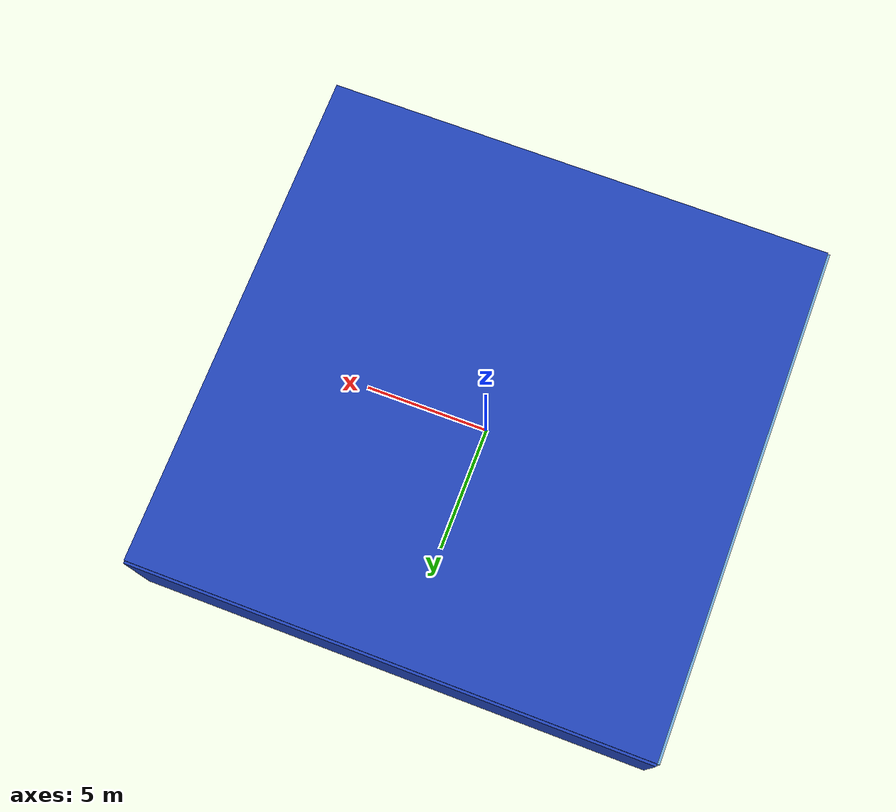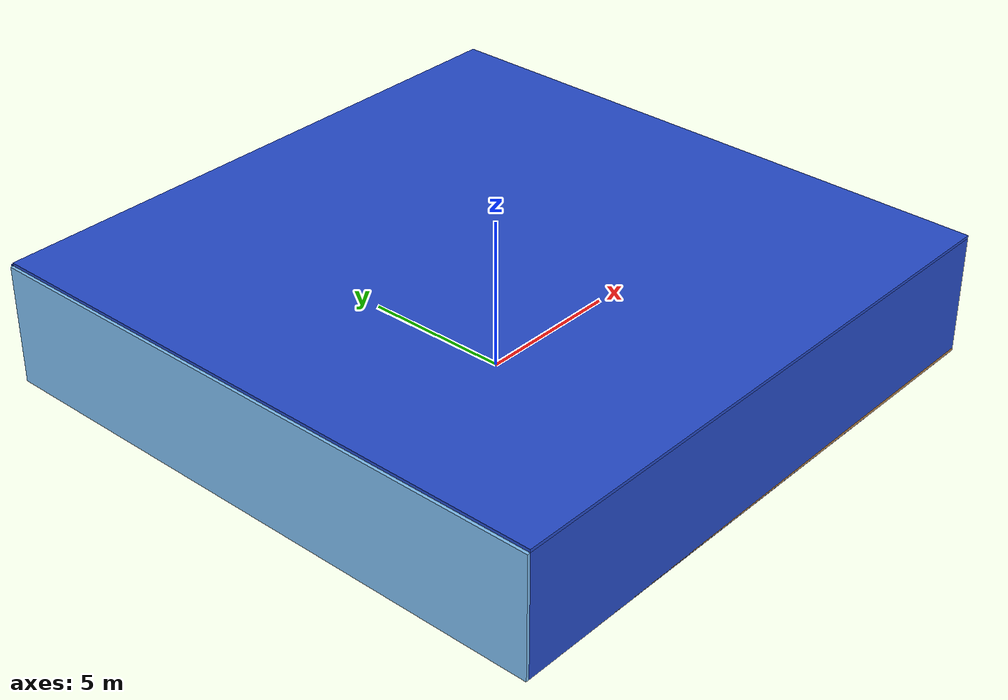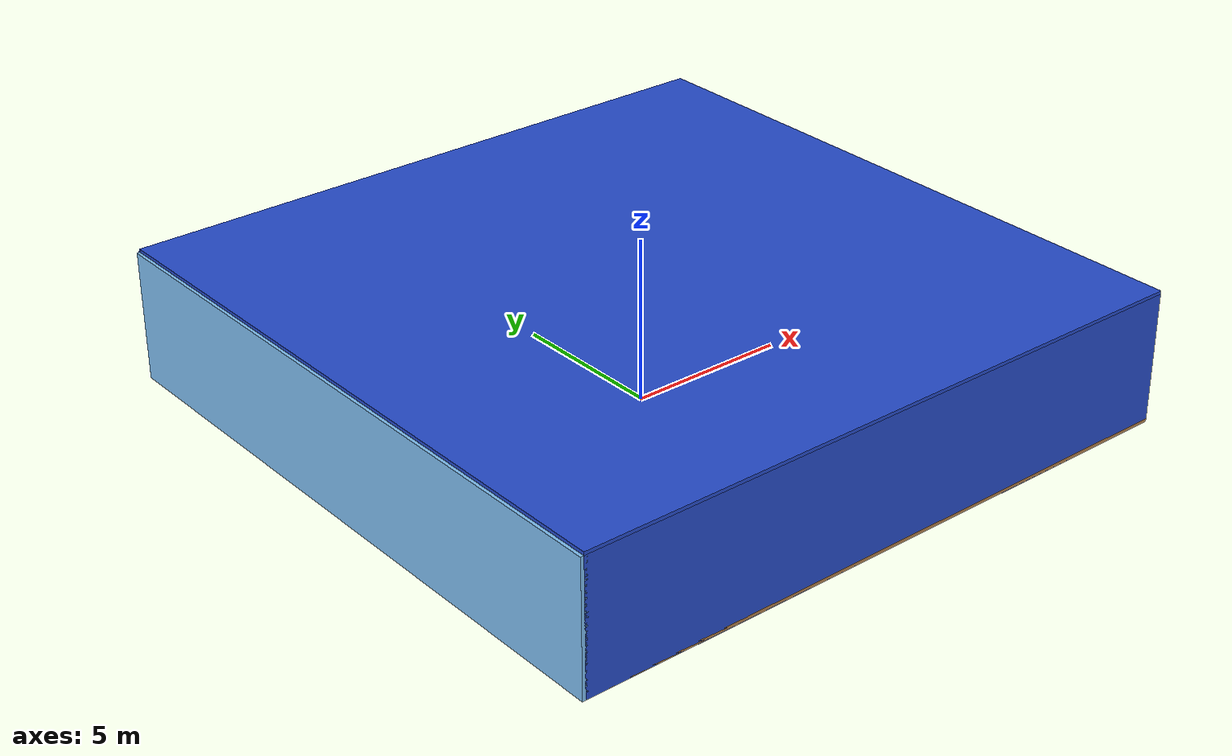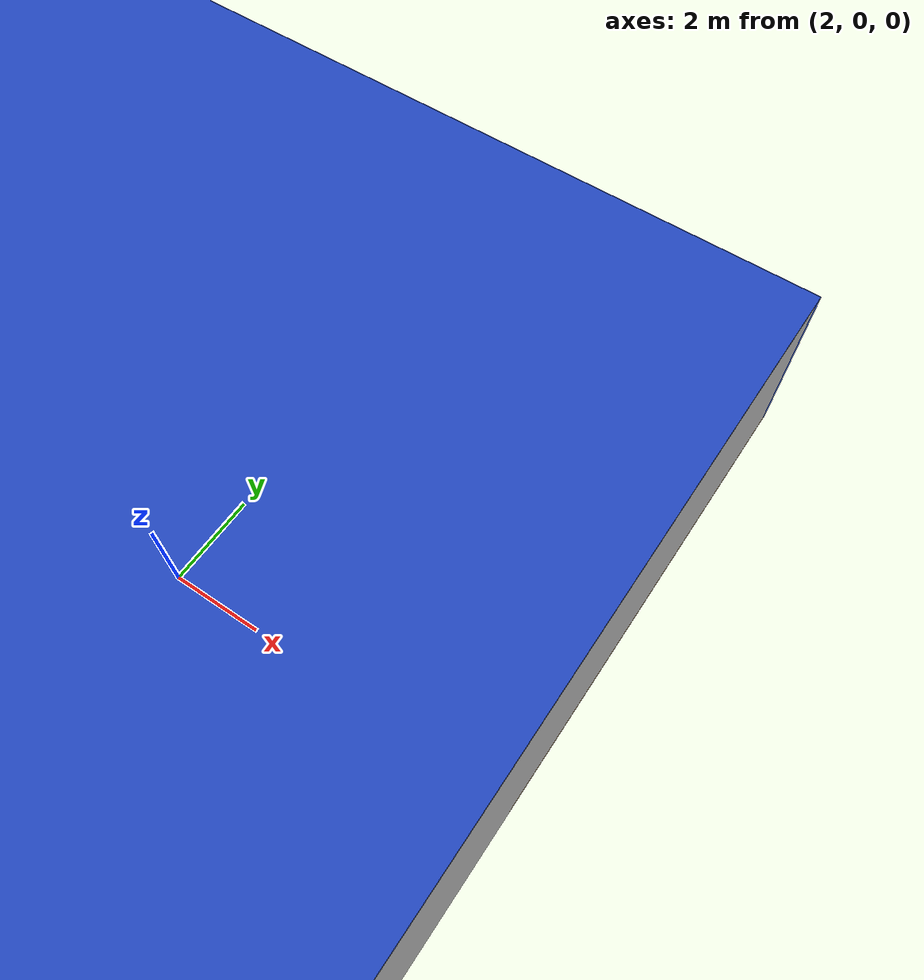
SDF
<sdf version="1.4">
 <world name="default">
  <physics type="ode">
   <max_step_size>0.001</max_step_size>
   <real_time_factor>1</real_time_factor>
   <real_time_update_rate>1000</real_time_update_rate>
   <gravity>0 0 -9.8</gravity>
  </physics>
  <scene><ambient>0.4 0.4 0.4 1</ambient><background>0.7 0.7 0.7 1</background><shadows>1</shadows></scene>
  <model name="Surrounding">
   <static>1</static>
   <link name="Ceiling">
    <collision name="Ceiling_Collision"><geometry><box><size>20 20 0.1</size></box></geometry></collision>
    <visual name="Ceiling_Visual">
     <geometry><box><size>20 20 0.1</size></box></geometry>
     <material>
      <script><uri>file://media/materials/scripts/gazebo.material</uri><name>Gazebo/Blue</name></script>
     </material>
    </visual>
    <pose>0 0 4.05 0 0 0</pose>
   </link>
   <link name="Wall_South">
    <collision name="Wall_South_Collision">
     <geometry><box><size>20 0 4</size></box></geometry>
     <pose>0 0 2 0 -0 0</pose>
    </collision>
    <visual name="Wall_South_Visual">
     <pose>0 0 2 0 -0 0</pose>
     <geometry><box><size>20 0 4</size></box></geometry>
     <material>
      <script><uri>file://media/materials/scripts/gazebo.material</uri><name>Gazebo/BlueGlow</name></script>
     </material>
    </visual>
    <velocity_decay><linear>0</linear><angular>0</angular></velocity_decay>
    <pose>0 -10 0 0 -0 0</pose>
   </link>
   <link name="Wall_East">
    <collision name="Wall_21_Collision">
     <geometry><box><size>20 0 4</size></box></geometry>
     <pose>0 0 2 0 -0 0</pose>
    </collision>
    <visual name="Wall_21_Visual">
     <pose>0 0 2 0 -0 0</pose>
     <geometry><box><size>20 0 4</size></box></geometry>
     <material>
      <script><uri>file://media/materials/scripts/gazebo.material</uri><name>Gazebo/Grey</name></script>
     </material>
    </visual>
    <velocity_decay><linear>0</linear><angular>0</angular></velocity_decay>
    <pose>10 0 0 0 -0 1.5708</pose>
   </link>
   <link name="Wall_North">
    <collision name="Wall_22_Collision">
     <geometry><box><size>20 0.2 4</size></box></geometry>
     <pose>0 0 2 0 -0 0</pose>
    </collision>
    <visual name="Wall_22_Visual">
     <pose>0 0 2 0 -0 0</pose>
     <geometry><box><size>20 0.2 4</size></box></geometry>
     <material>
      <script><uri>file://media/materials/scripts/gazebo.material</uri><name>Gazebo/Blue</name></script>
     </material>
    </visual>
    <velocity_decay><linear>0</linear><angular>0</angular></velocity_decay>
    <pose>0 10 0 0 -0 0</pose>
   </link>
   <link name="Wall_West">
    <collision name="Wall_23_Collision">
     <geometry><box><size>20 0.2 4</size></box></geometry>
     <pose>0 0 2 0 -0 0</pose>
    </collision>
    <visual name="Wall_23_Visual">
     <pose>0 0 2 0 -0 0</pose>
     <geometry><box><size>20 0.2 4</size></box></geometry>
     <material>
      <script><uri>file://media/materials/scripts/gazebo.material</uri><name>Gazebo/SkyBlue</name></script>
     </material>
    </visual>
    <velocity_decay><linear>0</linear><angular>0</angular></velocity_decay>
    <pose>-10 0 0 0 0 -1.5708</pose>
   </link>
   <link name="Ground_link">
    <collision name="collision">
     <pose>0 0 .05 0 -0 0</pose>
     <geometry><box><size>20 20 0.1</size></box></geometry>
    </collision>
    <visual name="visual">
     <pose>0 0 .05 0 -0 0</pose>
     <geometry><box><size>20 20 0.1</size></box></geometry>
     <material>
      <script><uri>file://media/materials/scripts/gazebo.material</uri><name>Gazebo/Wood</name></script>
     </material>
    </visual>
   </link>
   <static>1</static>
  </model>
  <spherical_coordinates>
   <surface_model>EARTH_WGS84</surface_model>
   <latitude_deg>0</latitude_deg>
   <longitude_deg>0</longitude_deg>
   <elevation>0</elevation>
   <heading_deg>0</heading_deg>
  </spherical_coordinates>
  <light name="lightball_0" type="diffuse">
   <diffuse>0.8 0.8 0.8 1</diffuse>
   <specular>0.2 0.2 0.2 1</specular>
   <attenuation>
    <range>100</range>
    <constant>0.7</constant>
    <linear>0.01</linear>
    <quadratic>0.001</quadratic>
   </attenuation>
   <direction>-0.5 0.1 -0.9</direction>
   <pose>-2.65994333923 9.39957330298 1.01240829971 0 0 0</pose>
  </light>
  <light name="lightball_1" type="diffuse">
   <diffuse>0.8 0.8 0.8 1</diffuse>
   <specular>0.2 0.2 0.2 1</specular>
   <attenuation>
    <range>100</range>
    <constant>0.7</constant>
    <linear>0.01</linear>
    <quadratic>0.001</quadratic>
   </attenuation>
   <direction>-0.5 0.1 -0.9</direction>
   <pose>-1.72059526053 4.03597530283 3.70898476559 0 0 0</pose>
  </light>
  <light name="lightball_2" type="diffuse">
   <diffuse>0.8 0.8 0.8 1</diffuse>
   <specular>0.2 0.2 0.2 1</specular>
   <attenuation>
    <range>100</range>
    <constant>0.7</constant>
    <linear>0.01</linear>
    <quadratic>0.001</quadratic>
   </attenuation>
   <direction>-0.5 0.1 -0.9</direction>
   <pose>8.75399553148 -2.9004482034 3.46632618828 0 0 0</pose>
  </light>
  <light name="lightball_3" type="diffuse">
   <diffuse>0.8 0.8 0.8 1</diffuse>
   <specular>0.2 0.2 0.2 1</specular>
   <attenuation>
    <range>100</range>
    <constant>0.7</constant>
    <linear>0.01</linear>
    <quadratic>0.001</quadratic>
   </attenuation>
   <direction>-0.5 0.1 -0.9</direction>
   <pose>-2.07387995605 -2.75626353378 1.53917227275 0 0 0</pose>
  </light>
  <light name="lightball_4" type="diffuse">
   <diffuse>0.8 0.8 0.8 1</diffuse>
   <specular>0.2 0.2 0.2 1</specular>
   <attenuation>
    <range>100</range>
    <constant>0.7</constant>
    <linear>0.01</linear>
    <quadratic>0.001</quadratic>
   </attenuation>
   <direction>-0.5 0.1 -0.9</direction>
   <pose>0.722746977058 -0.907110741461 3.40081127779 0 0 0</pose>
  </light>
  <light name="lightball_5" type="diffuse">
   <diffuse>0.8 0.8 0.8 1</diffuse>
   <specular>0.2 0.2 0.2 1</specular>
   <attenuation>
    <range>100</range>
    <constant>0.7</constant>
    <linear>0.01</linear>
    <quadratic>0.001</quadratic>
   </attenuation>
   <direction>-0.5 0.1 -0.9</direction>
   <pose>6.1992554817 1.31733431241 1.62404718554 0 0 0</pose>
  </light>
  <light name="lightball_6" type="diffuse">
   <diffuse>0.8 0.8 0.8 1</diffuse>
   <specular>0.2 0.2 0.2 1</specular>
   <attenuation>
    <range>100</range>
    <constant>0.7</constant>
    <linear>0.01</linear>
    <quadratic>0.001</quadratic>
   </attenuation>
   <direction>-0.5 0.1 -0.9</direction>
   <pose>2.91749736451 -8.17221591182 3.81663995187 0 0 0</pose>
  </light>
  <include>
   <uri>model://robocup_3Dsim_goal</uri>
   <pose>-5.06521671102 -1.55737638684 0 0 0 1.38334876763</pose>
  </include>
  <include>
   <uri>model://textured_shapes</uri>
   <pose>1.07183250613 7.59622486731 0 0 0 1.03962719378</pose>
  </include>
  <include><uri>model://table</uri><pose>7.23151929275 0.784712538135 0 0 0 0.841211740745</pose></include>
  <include>
   <uri>model://textured_shapes</uri>
   <pose>8.21175562267 5.28048497287 0 0 0 0.35942757016</pose>
  </include>
  <include>
   <uri>model://robocup_3Dsim_goal</uri>
   <pose>7.99816032128 7.8989084783 0 0 0 1.28699152494</pose>
  </include>
 </world>
</sdf>

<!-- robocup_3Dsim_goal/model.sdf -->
<sdf version="1.5">
  <model name="robocup_3d_goal">
    <static>true</static>
    <link name="left_post">
      <pose>0 1.05 0.45 0 0 0</pose>
      <collision name="collision">
        <geometry>
          <cylinder>
            <radius>0.05</radius>
            <length>0.9</length>
          </cylinder>
        </geometry>
      </collision>
      <visual name="visual">
        <geometry>
          <cylinder>
            <radius>0.05</radius>
            <length>0.9</length>
          </cylinder>
        </geometry>
        <material>
          <script>
            <uri>file://media/materials/scripts/gazebo.material</uri>
            <name>Gazebo/ZincYellow</name>
          </script>
        </material>
      </visual>
    </link>
    <link name="left_support_horiz_lower">
      <pose>0.30 1.05 0.01 0 0 0</pose>
      <collision name="collision">
        <geometry>
          <box>
            <size>0.50 0.02 0.02</size>
          </box>
        </geometry>
      </collision>
      <visual name="visual">
        <geometry>
          <box>
            <size>0.50 0.02 0.02</size>
          </box>
        </geometry>
        <material>
          <script>
            <uri>file://media/materials/scripts/gazebo.material</uri>
            <name>Gazebo/White</name>
          </script>
        </material>
      </visual>
    </link>
    <link name="left_support_horiz_upper">
      <pose>0.30 1.05 0.79 0 0 0</pose>
      <collision name="collision">
        <geometry>
          <box>
            <size>0.50 0.02 0.02</size>
          </box>
        </geometry>
      </collision>
      <visual name="visual">
        <geometry>
          <box>
            <size>0.50 0.02 0.02</size>
          </box>
        </geometry>
        <material>
          <script>
            <uri>file://media/materials/scripts/gazebo.material</uri>
            <name>Gazebo/White</name>
          </script>
        </material>
      </visual>
    </link>
    <link name="left_support_vertical">
      <pose>0.56 1.05 0.4 0 1.5708 0</pose>
      <collision name="collision">
        <geometry>
          <box>
            <size>0.80 0.02 0.02</size>
          </box>
        </geometry>
      </collision>
      <visual name="visual">
        <geometry>
          <box>
            <size>0.80 0.02 0.02</size>
          </box>
        </geometry>
        <material>
          <script>
            <uri>file://media/materials/scripts/gazebo.material</uri>
            <name>Gazebo/White</name>
          </script>
        </material>
      </visual>
    </link>
    <link name="right_support_horiz_lower">
      <pose>0.30 -1.05 0.01 0 0 0</pose>
      <collision name="collision">
        <geometry>
          <box>
            <size>0.50 0.02 0.02</size>
          </box>
        </geometry>
      </collision>
      <visual name="visual">
        <geometry>
          <box>
            <size>0.50 0.02 0.02</size>
          </box>
        </geometry>
        <material>
          <script>
            <uri>file://media/materials/scripts/gazebo.material</uri>
            <name>Gazebo/White</name>
          </script>
        </material>
      </visual>
    </link>
    <link name="right_support_horiz_upper">
      <pose>0.30 -1.05 0.79 0 0 0</pose>
      <collision name="collision">
        <geometry>
          <box>
            <size>0.50 0.02 0.02</size>
          </box>
        </geometry>
      </collision>
      <visual name="visual">
        <geometry>
          <box>
            <size>0.50 0.02 0.02</size>
          </box>
        </geometry>
        <material>
          <script>
            <uri>file://media/materials/scripts/gazebo.material</uri>
            <name>Gazebo/White</name>
          </script>
        </material>
      </visual>
    </link>
    <link name="right_support_vertical">
      <pose>0.56 -1.05 0.4 0 1.5708 0</pose>
      <collision name="collision">
        <geometry>
          <box>
            <size>0.80 0.02 0.02</size>
          </box>
        </geometry>
      </collision>
      <visual name="visual">
        <geometry>
          <box>
            <size>0.80 0.02 0.02</size>
          </box>
        </geometry>
        <material>
          <script>
            <uri>file://media/materials/scripts/gazebo.material</uri>
            <name>Gazebo/White</name>
          </script>
        </material>
      </visual>
    </link>
    <link name="center_support_horiz_lower">
      <pose>0.56 0 0.01 0 1.5708 0</pose>
      <collision name="collision">
        <geometry>
          <box>
            <size>0.02 2.08 0.02</size>
          </box>
        </geometry>
      </collision>
      <visual name="visual">
        <geometry>
          <box>
            <size>0.02 2.08 0.02</size>
          </box>
        </geometry>
        <material>
          <script>
            <uri>file://media/materials/scripts/gazebo.material</uri>
            <name>Gazebo/White</name>
          </script>
        </material>
      </visual>
    </link>
    <link name="center_support_horiz_upper">
      <pose>0.56 0 0.79 0 1.5708 0</pose>
      <collision name="collision">
        <geometry>
          <box>
            <size>0.02 2.08 0.02</size>
          </box>
        </geometry>
      </collision>
      <visual name="visual">
        <geometry>
          <box>
            <size>0.02 2.08 0.02</size>
          </box>
        </geometry>
        <material>
          <script>
            <uri>file://media/materials/scripts/gazebo.material</uri>
            <name>Gazebo/White</name>
          </script>
        </material>
      </visual>
    </link>
    <link name="right_post">
      <pose>0 -1.05 0.45 0 0 0</pose>
      <collision name="collision">
        <geometry>
          <cylinder>
            <radius>0.05</radius>
            <length>0.9</length>
          </cylinder>
        </geometry>
      </collision>
      <visual name="visual">
        <geometry>
          <cylinder>
            <radius>0.05</radius>
            <length>0.9</length>
          </cylinder>
        </geometry>
        <material>
          <script>
            <uri>file://media/materials/scripts/gazebo.material</uri>
            <name>Gazebo/ZincYellow</name>
          </script>
        </material>
      </visual>
    </link>
    <link name="crossbar">
      <pose>0 0 0.85 1.57 1.57 0</pose>
      <collision name="collision">
        <geometry>
          <cylinder>
            <radius>0.05</radius>
            <length>2.0</length>
          </cylinder>
        </geometry>
      </collision>
      <visual name="visual">
        <geometry>
          <cylinder>
            <radius>0.05</radius>
            <length>2.0</length>
          </cylinder>
        </geometry>
        <material>
          <script>
            <uri>file://media/materials/scripts/gazebo.material</uri>
            <name>Gazebo/ZincYellow</name>
          </script>
        </material>
      </visual>
    </link>
    <link name="center_net">
      <pose>0.56 0 0.40 0 0 0</pose>
      <collision name="collision">
        <geometry>
          <box>
            <size>0.01 2.1 0.80</size>
          </box>
        </geometry>
      </collision>
      <visual name="visual">
        <geometry>
          <box>
            <size>0.01 2.1 0.80</size>
          </box>
        </geometry>
        <material>
          <script>
            <uri>model://../model_source/models/robocup09_spl_field/materials/scripts/</uri>
            <uri>model://../model_source/models/robocup09_spl_field/materials/textures/</uri>
            <name>RoboCup/Net</name>
          </script>
        </material>
      </visual>
    </link>
    <link name="left_net">
      <pose>0.30 1.05 0.40 0 0 0</pose>
      <collision name="collision">
        <geometry>
          <box>
            <size>0.50 0.01 0.76</size>
          </box>
        </geometry>
      </collision>
      <visual name="visual">
        <geometry>
          <box>
            <size>0.50 0.01 0.76</size>
          </box>
        </geometry>
        <material>
          <script>
            <uri>model://../model_source/models/robocup09_spl_field/materials/scripts/</uri>
            <uri>model://../model_source/models/robocup09_spl_field/materials/textures/</uri>
            <name>RoboCup/Net</name>
          </script>
        </material>
      </visual>
    </link>
    <link name="right_net">
      <pose>0.30 -1.05 0.40 0 0 0</pose>
      <collision name="collision">
        <geometry>
          <box>
            <size>0.50 0.01 0.76</size>
          </box>
        </geometry>
      </collision>
      <visual name="visual">
        <geometry>
          <box>
            <size>0.50 0.01 0.76</size>
          </box>
        </geometry>
        <material>
          <script>
            <uri>model://../model_source/models/robocup09_spl_field/materials/scripts/</uri>
            <uri>model://../model_source/models/robocup09_spl_field/materials/textures/</uri>
            <name>RoboCup/Net</name>
          </script>
        </material>
      </visual>
    </link>
  </model>
</sdf>

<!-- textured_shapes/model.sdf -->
<sdf version="1.6">
  <model name="textured_shapes">
    <pose>0 0 0.5 0 0 0</pose>
    <link name="box">
      <pose>0 -1.5 0 0 0 0</pose>
      <collision name="collision">
        <geometry>
          <box>
            <size>1 1 1</size>
          </box>
        </geometry>
      </collision>
      <visual name="visual">
        <geometry>
          <box>
            <size>1 1 1</size>
          </box>
        </geometry>
        <material>
          <script>
            <uri>model://../model_source/models/textured_shapes/materials/scripts</uri>
            <uri>model://../model_source/models/textured_shapes/materials/textures</uri>
            <name>TexturedShape/Squares</name>
          </script>
        </material>
      </visual>
    </link>
    <link name="sphere">
      <collision name="collision">
        <geometry>
          <sphere>
            <radius>0.5</radius>
          </sphere>
        </geometry>
      </collision>
      <visual name="visual">
        <geometry>
          <sphere>
            <radius>0.5</radius>
          </sphere>
        </geometry>
        <material>
          <script>
            <uri>model://../model_source/models/textured_shapes/materials/scripts</uri>
            <uri>model://../model_source/models/textured_shapes/materials/textures</uri>
            <name>TexturedShape/Squares</name>
          </script>
        </material>
      </visual>
    </link>
    <link name="cylinder">
      <pose>0 1.5 0 0 0 0</pose>
      <collision name="collision">
        <geometry>
          <cylinder>
            <radius>0.5</radius>
            <length>1</length>
          </cylinder>
        </geometry>
      </collision>
      <visual name="visual">
        <geometry>
          <cylinder>
            <radius>0.5</radius>
            <length>1</length>
          </cylinder>
        </geometry>
        <material>
          <script>
            <uri>model://../model_source/models/textured_shapes/materials/scripts</uri>
            <uri>model://../model_source/models/textured_shapes/materials/textures</uri>
            <name>TexturedShape/Squares</name>
          </script>
        </material>
      </visual>
    </link>
  </model>
</sdf>

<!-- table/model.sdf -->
<sdf version="1.5">
  <model name="table">
    <static>true</static>
    <link name="link">
      <collision name="surface">
        <pose>0 0 1.0 0 0 0</pose>
        <geometry>
          <box>
            <size>1.5 0.8 0.03</size>
          </box>
        </geometry>
        <surface>
          <friction>
            <ode>
              <mu>0.6</mu>
              <mu2>0.6</mu2>
            </ode>
          </friction>
        </surface>
      </collision>
      <visual name="visual1">
        <pose>0 0 1.0 0 0 0</pose>
        <geometry>
          <box>
            <size>1.5 0.8 0.03</size>
          </box>
        </geometry>
        <material>
          <script>
            <uri>model://media/materials/scripts/gazebo.material</uri>
            <name>Gazebo/Wood</name>
          </script>
        </material>
      </visual>
      <collision name="front_left_leg">
        <pose>0.68 0.38 0.5 0 0 0</pose>
        <geometry>
          <cylinder>
            <radius>0.02</radius>
            <length>1.0</length>
          </cylinder>
        </geometry>
      </collision>
      <visual name="front_left_leg">
        <pose>0.68 0.38 0.5 0 0 0</pose>
        <geometry>
          <cylinder>
            <radius>0.02</radius>
            <length>1.0</length>
          </cylinder>
        </geometry>
        <material>
          <script>
            <uri>model://media/materials/scripts/gazebo.material</uri>
            <name>Gazebo/Grey</name>
          </script>
        </material>
      </visual>
      <collision name="front_right_leg">
        <pose>0.68 -0.38 0.5 0 0 0</pose>
        <geometry>
          <cylinder>
            <radius>0.02</radius>
            <length>1.0</length>
          </cylinder>
        </geometry>
      </collision>
      <visual name="front_right_leg">
        <pose>0.68 -0.38 0.5 0 0 0</pose>
        <geometry>
          <cylinder>
            <radius>0.02</radius>
            <length>1.0</length>
          </cylinder>
        </geometry>
        <material>
          <script>
            <uri>model://media/materials/scripts/gazebo.material</uri>
            <name>Gazebo/Grey</name>
          </script>
        </material>
      </visual>
      <collision name="back_right_leg">
        <pose>-0.68 -0.38 0.5 0 0 0</pose>
        <geometry>
          <cylinder>
            <radius>0.02</radius>
            <length>1.0</length>
          </cylinder>
        </geometry>
      </collision>
      <visual name="back_right_leg">
        <pose>-0.68 -0.38 0.5 0 0 0</pose>
        <geometry>
          <cylinder>
            <radius>0.02</radius>
            <length>1.0</length>
          </cylinder>
        </geometry>
        <material>
          <script>
            <uri>model://media/materials/scripts/gazebo.material</uri>
            <name>Gazebo/Grey</name>
          </script>
        </material>
      </visual>
      <collision name="back_left_leg">
        <pose>-0.68 0.38 0.5 0 0 0</pose>
        <geometry>
          <cylinder>
            <radius>0.02</radius>
            <length>1.0</length>
          </cylinder>
        </geometry>
      </collision>
      <visual name="back_left_leg">
        <pose>-0.68 0.38 0.5 0 0 0</pose>
        <geometry>
          <cylinder>
            <radius>0.02</radius>
            <length>1.0</length>
          </cylinder>
        </geometry>
        <material>
          <script>
            <uri>model://media/materials/scripts/gazebo.material</uri>
            <name>Gazebo/Grey</name>
          </script>
        </material>
      </visual>
    </link>
  </model>
</sdf>
